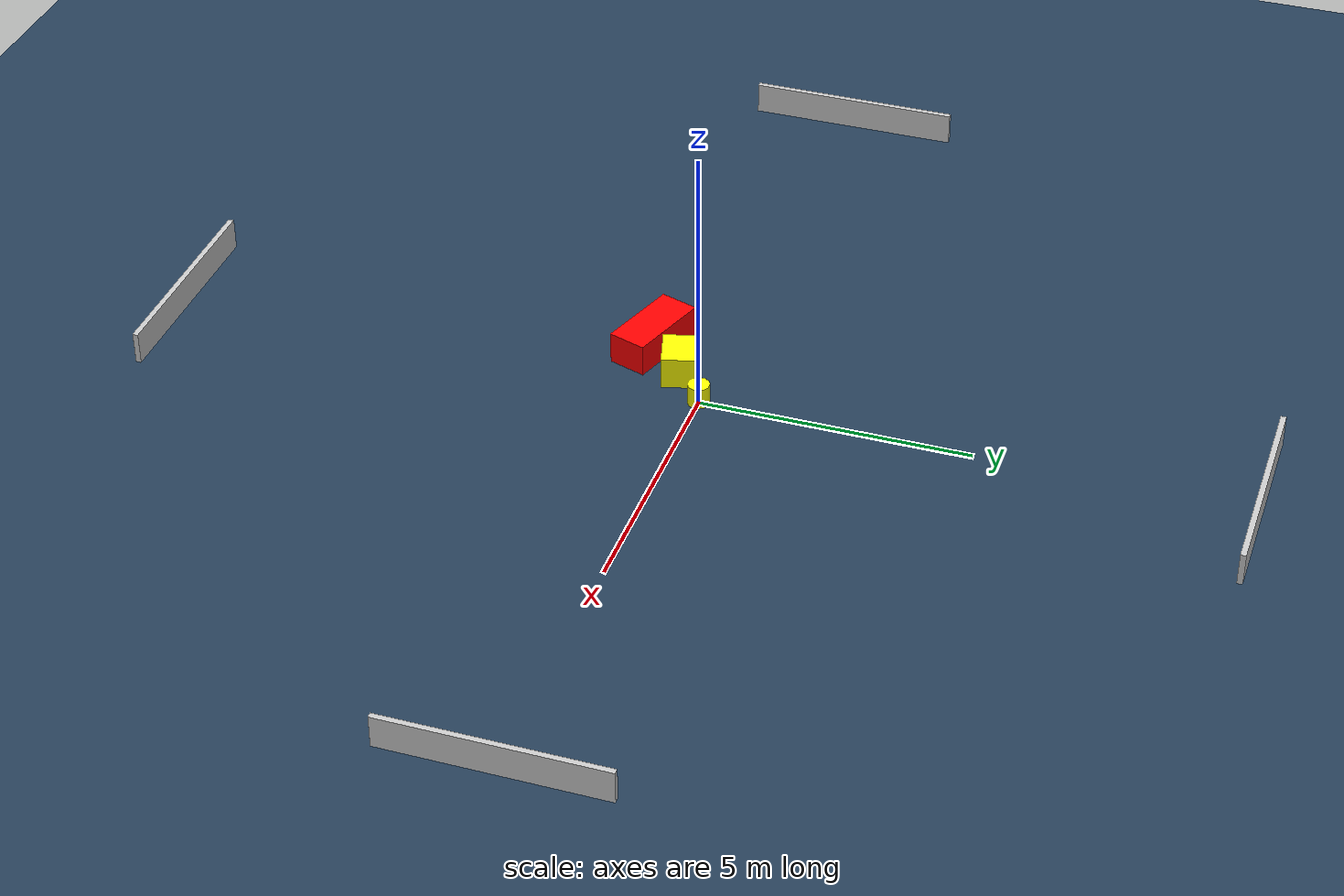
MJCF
<?xml version="1.0" ?>
<mujoco model="generated_environment">
  <option timestep="0.01" integrator="RK4" cone="elliptic"/>
  <default>
    <geom density="1"/>
  </default>
  <asset>
    <texture builtin="gradient" height="3072" name="skybox" rgb1="0.3 0.5 0.7" rgb2="0 0 0" type="skybox" width="512"/>
    <texture builtin="checker" height="300" name="groundplane" rgb1="0.2 0.3 0.4" rgb2="0.1 0.2 0.3" type="2d" width="300"/>
    <material name="groundplane" reflectance="0.2" texrepeat="5 5" texture="groundplane"/>
  </asset>
  <worldbody>
    <light dir="0 0 -1" directional="true" pos="0 0 1.5"/>
    <geom condim="3" friction="0.5 0.005 0.001" material="groundplane" name="floor" pos="0 0 0" size="0 0 0.05" type="plane"/>
    <body name="walls">
      <geom name="wall_1" condim="4" pos="-10.0 0.0 0.3" rgba="0.800000011920929 0.800000011920929 0.800000011920929 1.0" size="0.05 2.0 0.3" type="box"/>
      <geom name="wall_2" condim="4" pos="10.0 0.0 0.3" rgba="0.800000011920929 0.800000011920929 0.800000011920929 1.0" size="0.05 2.0 0.3" type="box"/>
      <geom name="wall_3" condim="4" pos="0.0 -10.0 0.3" rgba="0.800000011920929 0.800000011920929 0.800000011920929 1.0" size="2.0 0.05 0.3" type="box"/>
      <geom name="wall_4" condim="4" pos="0.0 10.0 0.3" rgba="0.800000011920929 0.800000011920929 0.800000011920929 1.0" size="2.0 0.05 0.3" type="box"/>
    </body>
    <body name="robot">
      <joint name="joint_x" type="slide" pos="0 0 0" axis="1 0 0"/>
      <joint name="joint_y" type="slide" pos="0 0 0" axis="0 1 0"/>
      <geom name="robot" type="cylinder" pos="0.0 0.0 0.2" size="0.2 0.2 0.0" mass="5.0" friction="1.0 0.005 0.0001" condim="4" rgba="1.0 1.0 0.0 1.0"/>
    </body>
    <body name="obstacle_1_movable">
      <geom name="obstacle_1_movable" condim="4" pos="-0.6863315540494189 -0.5814143440585284 0.3" euler="0 0 195.8465749947656" friction="0.0 0.005 0.001" rgba="1.0 1.0 0.0 1.0" size="0.3955951585795661 0.31995552659772547 0.3" type="box" mass="0.1"/>
      <joint type="free"/>
    </body>
    <body name="obstacle_2_static">
      <geom name="obstacle_2_static" condim="4" pos="-1.3375094732224366 -1.3066184712473625 0.3" euler="0 0 71.68707677699005" friction="0.0 0.005 0.001" rgba="1.0 0.0 0.0 1.0" size="0.3638364288119298 0.790528615319783 0.3" type="box"/>
    </body>
  </worldbody>
  <actuator>
    <motor name="actuator_x" joint="joint_x" gear="1" ctrlrange="-1 1"/>
    <motor name="actuator_y" joint="joint_y" gear="1" ctrlrange="-1 1"/>
  </actuator>
</mujoco>
